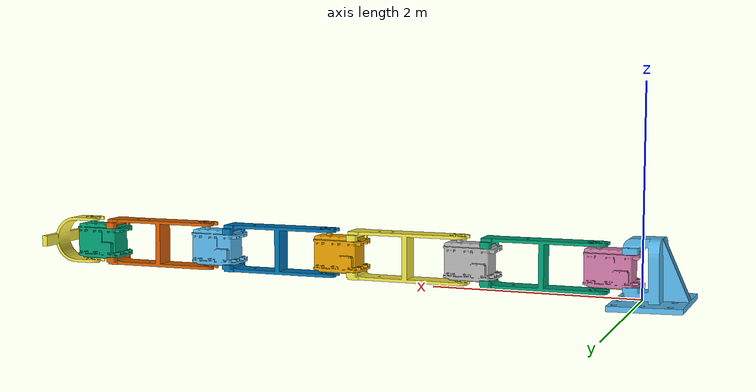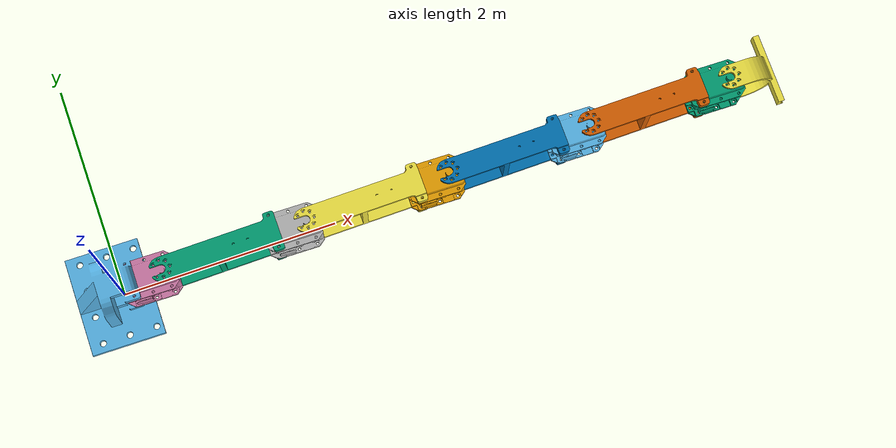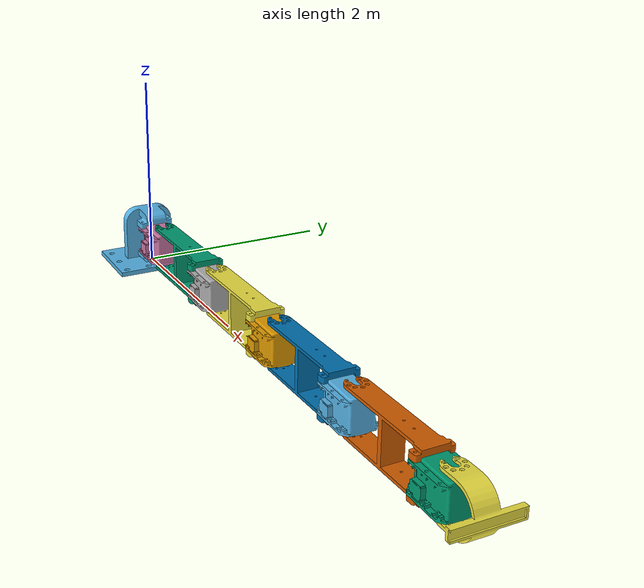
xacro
<?xml version="1.0"?>

<robot xmlns:xacro="http://www.ros.org/wiki/xacro" name="hand_tutorial">

 <xacro:macro name="default_inertial" params="mass">
    <inertial>
      <mass value="${mass}" />
      <inertia ixx="1.0" ixy="0.0" ixz="0.0" iyy="1.0" iyz="0.0" izz="1.0" />
    </inertial>
</xacro:macro>
<link name="world"/>

<link name="base_link">
	<visual name="link_visual">
	<geometry>
	<mesh filename="package://robot_description/meshes/ggwp.stl" />
	</geometry>
	<origin xyz="0 0 -0.05" rpy="0 0 0"/>
	</visual>
	<collision name="link_collision">
	<geometry>
	<mesh filename ="package://robot_description/meshes/ggwp.stl" />
	</geometry>
	<origin xyz="0 0 -0.05" rpy="0 0 0"/>
	</collision>
	<xacro:default_inertial mass="0.01"/>
</link>

<link name="m2m">
	<visual name="m2m_visual">
	<geometry>
	<mesh filename="package://robot_description/meshes/m2mn.stl"/>
	</geometry>
	<origin rpy ="0 0 3.14" xyz="0 0 0"/>
	</visual>
	<collision name="m2m_collision">
	<geometry>
	<mesh filename="package://robot_description/meshes/m2mn.stl"/>
	</geometry>
	<origin rpy ="0 0 3.14" xyz="0 0 0"/>
	</collision>
	<xacro:default_inertial mass="0.01"/>
</link>

<link name="m2m01">
	<visual name="m2m_visual01">
	<geometry>
	<mesh filename="package://robot_description/meshes/m2mn.stl"/>
	</geometry>
	<origin rpy ="0 0 3.14" xyz="0 0 0"/>
	</visual>
	<collision name="m2m_collision01">
	<geometry>
	<mesh filename="package://robot_description/meshes/m2mn.stl"/>
	</geometry>
	<origin rpy ="0 0 3.14" xyz="0 0 0"/>
	</collision>
	<xacro:default_inertial mass="0.01"/>
</link>

<link name="m2m02">
	<visual name="m2m_visual01">
	<geometry>
	<mesh filename="package://robot_description/meshes/m2mn.stl"/>
	</geometry>
	<origin rpy ="0 0 3.14" xyz="0 0 0"/>
	</visual>
	<collision name="m2m_collision01">
	<geometry>
	<mesh filename="package://robot_description/meshes/m2mn.stl"/>
	</geometry>
	<origin rpy ="0 0 3.14" xyz="0 0 0"/>
	</collision>
	<xacro:default_inertial mass="0.01"/>
</link>

<link name="m2m03">
	<visual name="m2m_visual01">
	<geometry>
	<mesh filename="package://robot_description/meshes/m2mn.stl"/>
	</geometry>
	<origin rpy ="0 0 3.14" xyz="0 0 0"/>
	</visual>
	<collision name="m2m_collision01">
	<geometry>
	<mesh filename="package://robot_description/meshes/m2mn.stl"/>
	</geometry>
	<origin rpy ="0 0 3.14" xyz="0 0 0"/>
	</collision>
	<xacro:default_inertial mass="0.01"/>
</link>

<link name="motor">
	<visual name="motor_visual">
	<geometry>
	<mesh filename="package://robot_description/meshes/motor.stl"/>
	</geometry>
	<origin rpy ="0 0 3.14" xyz="0 0 0"/>
	</visual>
	<collision name="motor_collision">
	<geometry>
	<mesh filename="package://robot_description/meshes/motor.stl"/>
	</geometry>
	<origin rpy ="0 0 3.14" xyz="0 0 0"/>
	</collision>
	<xacro:default_inertial mass="0.01"/>
</link>

<link name="motor01">
	<visual name="motor_visual">
	<geometry>
	<mesh filename="package://robot_description/meshes/motor.stl"/>
	</geometry>
	<origin rpy ="0 0 3.14" xyz="0 0 0"/>
	</visual>
	<collision name="motor_collision">
	<geometry>
	<mesh filename="package://robot_description/meshes/motor.stl"/>
	</geometry>
	<origin rpy ="0 0 3.14" xyz="0 0 0"/>
	</collision>
	<xacro:default_inertial mass="0.01"/>
</link>

<link name="motor02">
	<visual name="motor_visual">
	<geometry>
	<mesh filename="package://robot_description/meshes/motor.stl"/>
	</geometry>
	<origin rpy ="0 0 3.14" xyz="0 0 0"/>
	</visual>
	<collision name="motor_collision">
	<geometry>
	<mesh filename="package://robot_description/meshes/motor.stl"/>
	</geometry>
	<origin rpy ="0 0 3.14" xyz="0 0 0"/>
	</collision>
	<xacro:default_inertial mass="0.01"/>
</link>

<link name="motor03">
	<visual name="motor_visual">
	<geometry>
	<mesh filename="package://robot_description/meshes/motor.stl"/>
	</geometry>
	<origin rpy ="0 0 3.14" xyz="0 0 0"/>
	</visual>
	<collision name="motor_collision">
	<geometry>
	<mesh filename="package://robot_description/meshes/motor.stl"/>
	</geometry>
	<origin rpy ="0 0 3.14" xyz="0 0 0"/>
	</collision>
	<xacro:default_inertial mass="0.01"/>
</link>

<link name="motor04">
	<visual name="motor_visual">
	<geometry>
	<mesh filename="package://robot_description/meshes/motor.stl"/>
	</geometry>
	<origin rpy ="0 0 3.14" xyz="0 0 0"/>
	</visual>
	<collision name="motor_collision">
	<geometry>
	<mesh filename="package://robot_description/meshes/motor.stl"/>
	</geometry>
	<origin rpy ="0 0 3.14" xyz="0 0 0"/>
	</collision>
	<xacro:default_inertial mass="0.01"/>
</link>

<link name="endeffector">
	<visual name="end_visual">
	<geometry>
	<mesh filename="package://robot_description/meshes/end.stl"/>
	</geometry>
	<origin rpy= " 0 0 0" xyz ="0 0 0"/>
	</visual>
	<collision name="end_collision">
	<geometry>
	<mesh filename="package://robot_description/meshes/end.stl"/>
	</geometry>
	<origin rpy="0 0 0" xyz="0 0 0"/>
	</collision>
	<xacro:default_inertial mass="0.01"/>
</link>

<joint name="basetoworld" type="fixed">
	<parent link="world"/>
	<child link="base_link"/>
</joint>

<joint name="basetomotor" type="fixed">

	<parent link="base_link"/>
	<child link="motor"/>
	<origin xyz ="0.267 0 0.23"/>
</joint>

<joint name="motortom2m" type="revolute">
	<parent link="motor"/>
	<child link="m2m"/>
	<origin xyz ="0.14 0 -0.20"/>
	<axis xyz = "0 0 1"/>
	<limit effort="1000.0" lower="-2.1" upper="2.1" velocity="0.5"/>
</joint>

<joint name="joint1" type="fixed">
	<parent link ="m2m"/>
	<child link ="motor01"/>

	<origin xyz = "1.2 0 0.19"/>
	<limit effort="0" lower = "0.0" upper="0.0" velocity="0.0"/>
</joint>

<joint name="joint2" type="revolute">
	<parent link="motor01"/>
	<child link="m2m01"/>
	<origin xyz ="0.14 0 -0.187"/>
	<axis xyz = "0 0 1"/>
	<limit effort="1000.0" lower="-2.1" upper="2.1" velocity="0.5"/>
</joint>

<joint name="joint3" type ="fixed">
	<parent link ="m2m01"/>
	<child link="motor02"/>
	<origin xyz = "1.2 0 0.19"/>
	<limit effort="0" lower = "0.0" upper="0.0" velocity="0.0"/>
</joint>

<joint name="joint4" type="revolute">
	<parent link="motor02"/>
	<child link="m2m02"/>
	<origin xyz ="0.14 0 -0.187"/>
	<axis xyz = "0 0 1"/>
	<limit effort="1000.0" lower="-2.1" upper="2.1" velocity="0.5"/>
</joint>

<joint name="joint5" type ="fixed">
	<parent link ="m2m02"/>
	<child link="motor03"/>
	<origin xyz = "1.2 0 0.19"/>
	<limit effort="0" lower = "0.0" upper="0.0" velocity="0.0"/>
</joint>

<joint name="joint6" type="revolute">
	<parent link="motor03"/>
	<child link="m2m03"/>
	<origin xyz ="0.14 0 -0.187"/>
	<axis xyz = "0 0 1"/>
	<limit effort="1000.0" lower="-2.1" upper="2.1" velocity="0.5"/>
</joint>

<joint name="joint7" type ="fixed">
	<parent link ="m2m03"/>
	<child link="motor04"/>
	<origin xyz = "1.2 0 0.19"/>
	<limit effort="0" lower = "0.0" upper="0.0" velocity="0.0"/>
</joint>

<joint name="end" type="revolute">
	<parent link="motor04"/>
	<child link ="endeffector"/>
	<origin xyz="0.12 -0.01 -0.185"/>
	<axis xyz = "0 0 1"/>
	<limit effort="1000.0" lower = "-2.1" upper="2.1" velocity="0.5"/>
</joint>

<transmission name="tran1">
    <type>transmission_interface/SimpleTransmission</type>
    <joint name="motortom2m">
      <hardwareInterface>hardware_interface/EffortJointInterface</hardwareInterface>
    </joint>
    <actuator name="motor1">
      <hardwareInterface>hardware_interface/EffortJointInterface</hardwareInterface>
      <mechanicalReduction>1</mechanicalReduction>
    </actuator>
  </transmission>

<transmission name="tran2">
    <type>transmission_interface/SimpleTransmission</type>
    <joint name="joint2">
      <hardwareInterface>hardware_interface/EffortJointInterface</hardwareInterface>
    </joint>
    <actuator name="motor2">
      <hardwareInterface>hardware_interface/EffortJointInterface</hardwareInterface>
      <mechanicalReduction>1</mechanicalReduction>
    </actuator>
  </transmission>

<transmission name="tran3">
    <type>transmission_interface/SimpleTransmission</type>
    <joint name="joint4">
      <hardwareInterface>hardware_interface/EffortJointInterface</hardwareInterface>
    </joint>
    <actuator name="motor3">
      <hardwareInterface>hardware_interface/EffortJointInterface</hardwareInterface>
      <mechanicalReduction>1</mechanicalReduction>
    </actuator>
  </transmission>

<transmission name="tran4">
    <type>transmission_interface/SimpleTransmission</type>
    <joint name="joint6">
      <hardwareInterface>hardware_interface/EffortJointInterface</hardwareInterface>
    </joint>
    <actuator name="motor4">
      <hardwareInterface>hardware_interface/EffortJointInterface</hardwareInterface>
      <mechanicalReduction>1</mechanicalReduction>
    </actuator>
  </transmission>

<transmission name="tran4">
    <type>transmission_interface/SimpleTransmission</type>
    <joint name="end">
      <hardwareInterface>hardware_interface/EffortJointInterface</hardwareInterface>
    </joint>
    <actuator name="motor5">
      <hardwareInterface>hardware_interface/EffortJointInterface</hardwareInterface>
      <mechanicalReduction>1</mechanicalReduction>
    </actuator>
  </transmission>

 <!-- ros_control plugin -->
  <gazebo>
    <plugin name="gazebo_ros_control" filename="libgazebo_ros_control.so">
      <robotNamespace>/robot</robotNamespace>

    </plugin>
  </gazebo>
</robot>
